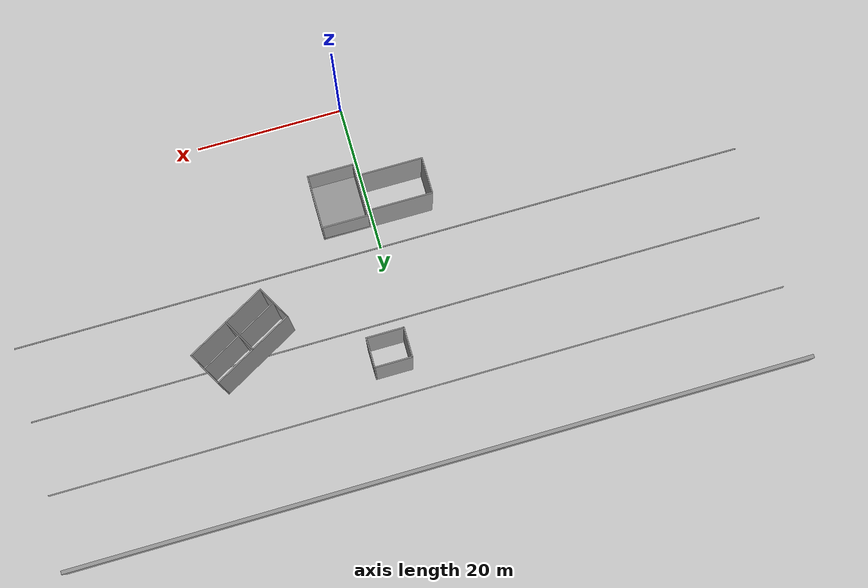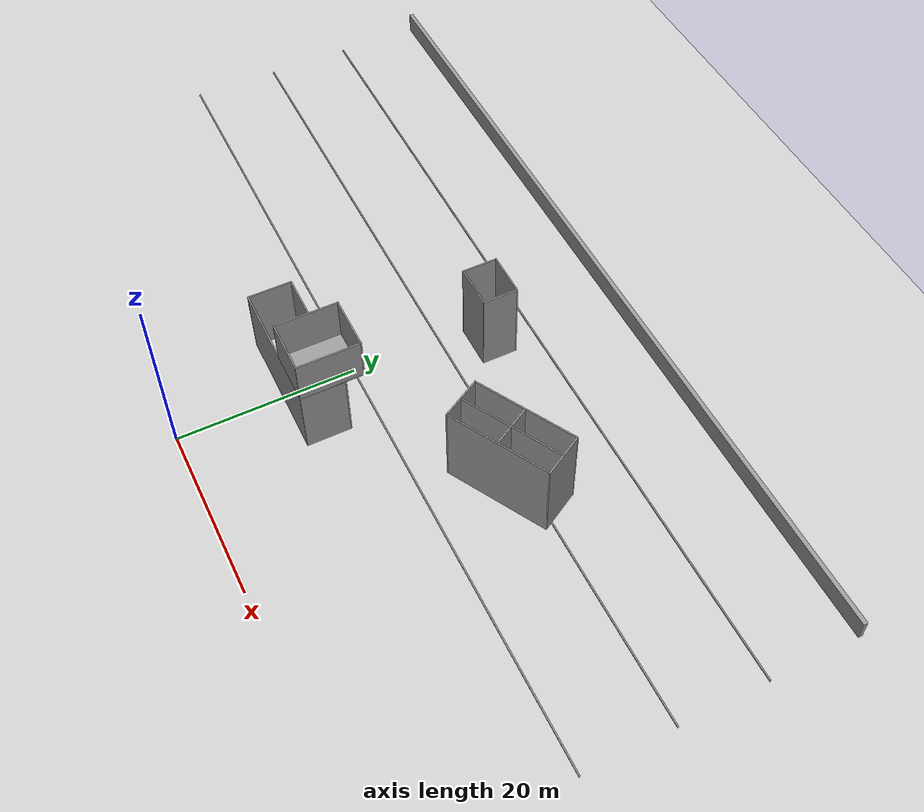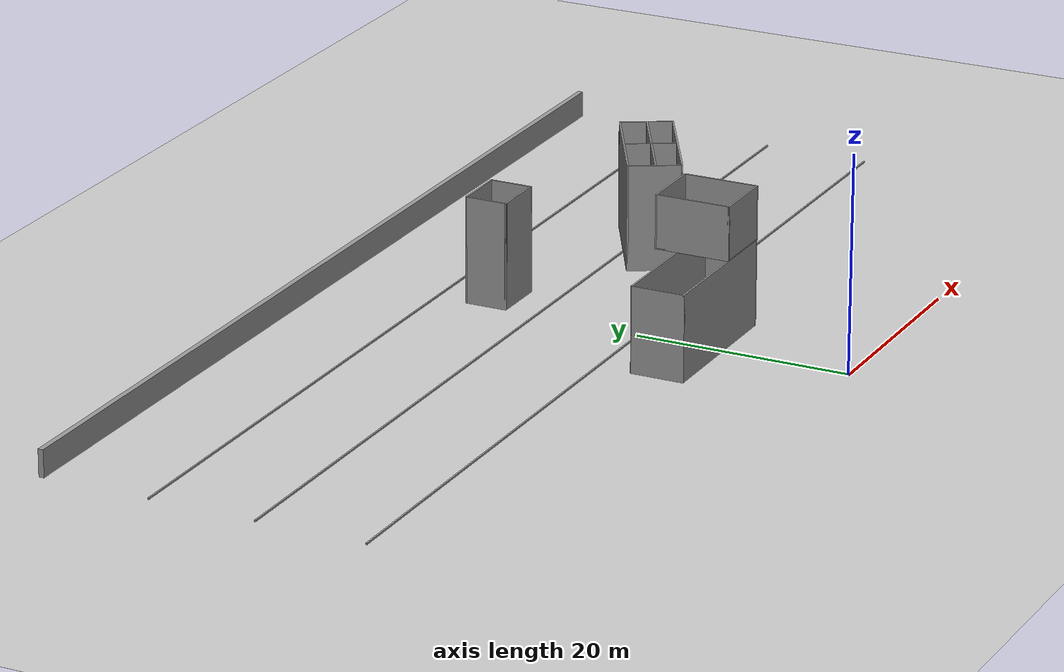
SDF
<sdf version="1.7">
 <world name="default">
  <model name="ground_plane">
   <static>1</static>
   <link name="link">
    <collision name="collision">
     <geometry><plane><normal>0 0 1</normal><size>100 100</size></plane></geometry>
     <surface><friction><ode><mu>100</mu><mu2>50</mu2></ode></friction></surface>
    </collision>
    <visual name="visual">
     <cast_shadows>0</cast_shadows>
     <geometry><plane><normal>0 0 1</normal><size>100 100</size></plane></geometry>
     <material>
      <script><uri>file://media/materials/scripts/gazebo.material</uri><name>Gazebo/Grey</name></script>
     </material>
    </visual>
   </link>
  </model>
  <model name="gridline100m_clone_0_clone_0">
   <pose>-0.012985 22.9729 0 0 -0 0</pose>
   <link name="Wall_2">
    <collision name="Wall_2_Collision">
     <geometry><box><size>100 0.15 0.15</size></box></geometry>
     <pose>0 0 0.075 0 -0 0</pose>
    </collision>
    <visual name="Wall_2_Visual">
     <pose>0 0 0.075 0 -0 0</pose>
     <geometry><box><size>100 0.15 0.15</size></box></geometry>
     <material>
      <script><uri>file://media/materials/scripts/gazebo.material</uri><name>Gazebo/Grey</name></script>
      <ambient>0 0 0 1</ambient>
     </material>
     <meta><layer>0</layer></meta>
    </visual>
    <pose>2e-06 -3.05812 0 0 -0 0</pose>
   </link>
   <static>1</static>
  </model>
  <model name="gridline100m_clone_0_clone_0_clone">
   <pose>-0.008378 33.0432 0 0 -0 0</pose>
   <link name="Wall_2">
    <collision name="Wall_2_Collision">
     <geometry><box><size>100 0.15 0.15</size></box></geometry>
     <pose>0 0 0.075 0 -0 0</pose>
    </collision>
    <visual name="Wall_2_Visual">
     <pose>0 0 0.075 0 -0 0</pose>
     <geometry><box><size>100 0.15 0.15</size></box></geometry>
     <material>
      <script><uri>file://media/materials/scripts/gazebo.material</uri><name>Gazebo/Grey</name></script>
      <ambient>0 0 0 1</ambient>
     </material>
     <meta><layer>0</layer></meta>
    </visual>
    <pose>2e-06 -3.05812 0 0 -0 0</pose>
   </link>
   <static>1</static>
  </model>
  <model name="gridline100m_clone_0_clone_0_clone_clone">
   <pose>-0.009803 42.9182 0 0 -0 0</pose>
   <link name="Wall_2">
    <collision name="Wall_2_Collision">
     <geometry><box><size>100 0.15 0.15</size></box></geometry>
     <pose>0 0 0.075 0 -0 0</pose>
    </collision>
    <visual name="Wall_2_Visual">
     <pose>0 0 0.075 0 -0 0</pose>
     <geometry><box><size>100 0.15 0.15</size></box></geometry>
     <material>
      <script><uri>file://media/materials/scripts/gazebo.material</uri><name>Gazebo/Grey</name></script>
      <ambient>0 0 0 1</ambient>
     </material>
     <meta><layer>0</layer></meta>
    </visual>
    <pose>2e-06 -3.05812 0 0 -0 0</pose>
   </link>
   <static>1</static>
  </model>
  <model name="building1_clone_0_clone_0">
   <link name="Wall_12">
    <pose>-1.19 -3.2645 0 0 -0 0</pose>
    <inertial>
     <mass>1</mass>
     <inertia><ixx>1</ixx><ixy>0</ixy><ixz>0</ixz><iyy>1</iyy><iyz>0</iyz><izz>1</izz></inertia>
    </inertial>
    <visual name="Wall_12_Visual">
     <pose>0 0 5 0 -0 0</pose>
     <geometry><box><size>5 0.15 10</size></box></geometry>
     <material>
      <script><uri>file://media/materials/scripts/gazebo.material</uri><name>Gazebo/Grey</name></script>
      <ambient>0.5 0.5 0.5 1</ambient>
      <shader type="pixel"><normal_map>__default__</normal_map></shader>
      <diffuse>0.5 0.5 0.5 1</diffuse>
      <specular>0.5 0.5 0.5 1</specular>
      <emissive>0 0 0 1</emissive>
     </material>
     <meta><layer>0</layer></meta>
    </visual>
    <collision name="Wall_12_Collision">
     <pose>0 0 5 0 -0 0</pose>
     <geometry><box><size>5 0.15 10</size></box></geometry>
     <surface>
      <friction>
       <ode><mu>1</mu><mu2>1</mu2><fdir1>0 0 0</fdir1><slip1>0</slip1><slip2>0</slip2></ode>
       <torsional>
        <coefficient>1</coefficient>
        <patch_radius>0</patch_radius>
        <surface_radius>0</surface_radius>
        <use_patch_radius>1</use_patch_radius>
        <ode><slip>0</slip></ode>
       </torsional>
      </friction>
      <bounce><restitution_coefficient>0</restitution_coefficient><threshold>1e+06</threshold></bounce>
      <contact>
       <collide_without_contact>0</collide_without_contact>
       <collide_without_contact_bitmask>1</collide_without_contact_bitmask>
       <collide_bitmask>1</collide_bitmask>
       <ode>
        <soft_cfm>0</soft_cfm>
        <soft_erp>0.2</soft_erp>
        <kp>1e+13</kp>
        <kd>1</kd>
        <max_vel>0.01</max_vel>
        <min_depth>0</min_depth>
       </ode>
       <bullet>
        <split_impulse>1</split_impulse>
        <split_impulse_penetration_threshold>-0.01</split_impulse_penetration_threshold>
        <soft_cfm>0</soft_cfm>
        <soft_erp>0.2</soft_erp>
        <kp>1e+13</kp>
        <kd>1</kd>
       </bullet>
      </contact>
     </surface>
    </collision>
   </link>
   <link name="Wall_13">
    <pose>1.235 -1.3395 0 0 -0 1.5708</pose>
    <inertial>
     <mass>1</mass>
     <inertia><ixx>1</ixx><ixy>0</ixy><ixz>0</ixz><iyy>1</iyy><iyz>0</iyz><izz>1</izz></inertia>
    </inertial>
    <visual name="Wall_13_Visual">
     <pose>0 0 5 0 -0 0</pose>
     <geometry><box><size>4 0.15 10</size></box></geometry>
     <material>
      <script><uri>file://media/materials/scripts/gazebo.material</uri><name>Gazebo/Grey</name></script>
      <ambient>0.5 0.5 0.5 1</ambient>
      <shader type="pixel"><normal_map>__default__</normal_map></shader>
      <diffuse>0.5 0.5 0.5 1</diffuse>
      <specular>0.5 0.5 0.5 1</specular>
      <emissive>0 0 0 1</emissive>
     </material>
     <meta><layer>0</layer></meta>
    </visual>
    <collision name="Wall_13_Collision">
     <pose>0 0 5 0 -0 0</pose>
     <geometry><box><size>4 0.15 10</size></box></geometry>
     <surface>
      <friction>
       <ode><mu>1</mu><mu2>1</mu2><fdir1>0 0 0</fdir1><slip1>0</slip1><slip2>0</slip2></ode>
       <torsional>
        <coefficient>1</coefficient>
        <patch_radius>0</patch_radius>
        <surface_radius>0</surface_radius>
        <use_patch_radius>1</use_patch_radius>
        <ode><slip>0</slip></ode>
       </torsional>
      </friction>
      <bounce><restitution_coefficient>0</restitution_coefficient><threshold>1e+06</threshold></bounce>
      <contact>
       <collide_without_contact>0</collide_without_contact>
       <collide_without_contact_bitmask>1</collide_without_contact_bitmask>
       <collide_bitmask>1</collide_bitmask>
       <ode>
        <soft_cfm>0</soft_cfm>
        <soft_erp>0.2</soft_erp>
        <kp>1e+13</kp>
        <kd>1</kd>
        <max_vel>0.01</max_vel>
        <min_depth>0</min_depth>
       </ode>
       <bullet>
        <split_impulse>1</split_impulse>
        <split_impulse_penetration_threshold>-0.01</split_impulse_penetration_threshold>
        <soft_cfm>0</soft_cfm>
        <soft_erp>0.2</soft_erp>
        <kp>1e+13</kp>
        <kd>1</kd>
       </bullet>
      </contact>
     </surface>
    </collision>
   </link>
   <link name="Wall_15">
    <pose>-1.19 0.5855 0 0 -0 3.14159</pose>
    <inertial>
     <mass>1</mass>
     <inertia><ixx>1</ixx><ixy>0</ixy><ixz>0</ixz><iyy>1</iyy><iyz>0</iyz><izz>1</izz></inertia>
    </inertial>
    <visual name="Wall_15_Visual">
     <pose>0 0 5 0 -0 0</pose>
     <geometry><box><size>5 0.15 10</size></box></geometry>
     <material>
      <script><uri>file://media/materials/scripts/gazebo.material</uri><name>Gazebo/Grey</name></script>
      <ambient>0.5 0.5 0.5 1</ambient>
      <shader type="pixel"><normal_map>__default__</normal_map></shader>
      <diffuse>0.5 0.5 0.5 1</diffuse>
      <specular>0.5 0.5 0.5 1</specular>
      <emissive>0 0 0 1</emissive>
     </material>
     <meta><layer>0</layer></meta>
    </visual>
    <collision name="Wall_15_Collision">
     <pose>0 0 5 0 -0 0</pose>
     <geometry><box><size>5 0.15 10</size></box></geometry>
     <surface>
      <friction>
       <ode><mu>1</mu><mu2>1</mu2><fdir1>0 0 0</fdir1><slip1>0</slip1><slip2>0</slip2></ode>
       <torsional>
        <coefficient>1</coefficient>
        <patch_radius>0</patch_radius>
        <surface_radius>0</surface_radius>
        <use_patch_radius>1</use_patch_radius>
        <ode><slip>0</slip></ode>
       </torsional>
      </friction>
      <bounce><restitution_coefficient>0</restitution_coefficient><threshold>1e+06</threshold></bounce>
      <contact>
       <collide_without_contact>0</collide_without_contact>
       <collide_without_contact_bitmask>1</collide_without_contact_bitmask>
       <collide_bitmask>1</collide_bitmask>
       <ode>
        <soft_cfm>0</soft_cfm>
        <soft_erp>0.2</soft_erp>
        <kp>1e+13</kp>
        <kd>1</kd>
        <max_vel>0.01</max_vel>
        <min_depth>0</min_depth>
       </ode>
       <bullet>
        <split_impulse>1</split_impulse>
        <split_impulse_penetration_threshold>-0.01</split_impulse_penetration_threshold>
        <soft_cfm>0</soft_cfm>
        <soft_erp>0.2</soft_erp>
        <kp>1e+13</kp>
        <kd>1</kd>
       </bullet>
      </contact>
     </surface>
    </collision>
   </link>
   <link name="Wall_16">
    <pose>-3.615 -1.3395 0 0 0 -1.5708</pose>
    <inertial>
     <mass>1</mass>
     <inertia><ixx>1</ixx><ixy>0</ixy><ixz>0</ixz><iyy>1</iyy><iyz>0</iyz><izz>1</izz></inertia>
    </inertial>
    <visual name="Wall_16_Visual">
     <pose>0 0 5 0 -0 0</pose>
     <geometry><box><size>4 0.15 10</size></box></geometry>
     <material>
      <script><uri>file://media/materials/scripts/gazebo.material</uri><name>Gazebo/Grey</name></script>
      <ambient>0.5 0.5 0.5 1</ambient>
      <shader type="pixel"><normal_map>__default__</normal_map></shader>
      <diffuse>0.5 0.5 0.5 1</diffuse>
      <specular>0.5 0.5 0.5 1</specular>
      <emissive>0 0 0 1</emissive>
     </material>
     <meta><layer>0</layer></meta>
    </visual>
    <collision name="Wall_16_Collision">
     <pose>0 0 5 0 -0 0</pose>
     <geometry><box><size>4 0.15 10</size></box></geometry>
     <surface>
      <friction>
       <ode><mu>1</mu><mu2>1</mu2><fdir1>0 0 0</fdir1><slip1>0</slip1><slip2>0</slip2></ode>
       <torsional>
        <coefficient>1</coefficient>
        <patch_radius>0</patch_radius>
        <surface_radius>0</surface_radius>
        <use_patch_radius>1</use_patch_radius>
        <ode><slip>0</slip></ode>
       </torsional>
      </friction>
      <bounce><restitution_coefficient>0</restitution_coefficient><threshold>1e+06</threshold></bounce>
      <contact>
       <collide_without_contact>0</collide_without_contact>
       <collide_without_contact_bitmask>1</collide_without_contact_bitmask>
       <collide_bitmask>1</collide_bitmask>
       <ode>
        <soft_cfm>0</soft_cfm>
        <soft_erp>0.2</soft_erp>
        <kp>1e+13</kp>
        <kd>1</kd>
        <max_vel>0.01</max_vel>
        <min_depth>0</min_depth>
       </ode>
       <bullet>
        <split_impulse>1</split_impulse>
        <split_impulse_penetration_threshold>-0.01</split_impulse_penetration_threshold>
        <soft_cfm>0</soft_cfm>
        <soft_erp>0.2</soft_erp>
        <kp>1e+13</kp>
        <kd>1</kd>
       </bullet>
      </contact>
     </surface>
    </collision>
   </link>
   <static>1</static>
   <pose>4.01416 36.2848 0 0 -0 0</pose>
  </model>
  <model name="building5_clone_clone_clone_2">
   <link name="Wall_64">
    <pose>-1e-06 -4.8275 0 0 -0 0</pose>
    <inertial>
     <mass>1</mass>
     <inertia><ixx>1</ixx><ixy>0</ixy><ixz>0</ixz><iyy>1</iyy><iyz>0</iyz><izz>1</izz></inertia>
    </inertial>
    <visual name="Wall_64_Visual">
     <pose>0 0 5 0 -0 0</pose>
     <geometry><box><size>12 0.15 10</size></box></geometry>
     <material>
      <script><uri>file://media/materials/scripts/gazebo.material</uri><name>Gazebo/Grey</name></script>
      <ambient>0.5 0.5 0.5 1</ambient>
      <shader type="pixel"><normal_map>__default__</normal_map></shader>
      <diffuse>0.5 0.5 0.5 1</diffuse>
      <specular>0.5 0.5 0.5 1</specular>
      <emissive>0 0 0 1</emissive>
     </material>
     <meta><layer>0</layer></meta>
    </visual>
    <collision name="Wall_64_Collision">
     <pose>0 0 5 0 -0 0</pose>
     <geometry><box><size>12 0.15 10</size></box></geometry>
     <surface>
      <friction>
       <ode><mu>1</mu><mu2>1</mu2><fdir1>0 0 0</fdir1><slip1>0</slip1><slip2>0</slip2></ode>
       <torsional>
        <coefficient>1</coefficient>
        <patch_radius>0</patch_radius>
        <surface_radius>0</surface_radius>
        <use_patch_radius>1</use_patch_radius>
        <ode><slip>0</slip></ode>
       </torsional>
      </friction>
      <bounce><restitution_coefficient>0</restitution_coefficient><threshold>1e+06</threshold></bounce>
      <contact>
       <collide_without_contact>0</collide_without_contact>
       <collide_without_contact_bitmask>1</collide_without_contact_bitmask>
       <collide_bitmask>1</collide_bitmask>
       <ode>
        <soft_cfm>0</soft_cfm>
        <soft_erp>0.2</soft_erp>
        <kp>1e+13</kp>
        <kd>1</kd>
        <max_vel>0.01</max_vel>
        <min_depth>0</min_depth>
       </ode>
       <bullet>
        <split_impulse>1</split_impulse>
        <split_impulse_penetration_threshold>-0.01</split_impulse_penetration_threshold>
        <soft_cfm>0</soft_cfm>
        <soft_erp>0.2</soft_erp>
        <kp>1e+13</kp>
        <kd>1</kd>
       </bullet>
      </contact>
     </surface>
    </collision>
   </link>
   <link name="Wall_65">
    <pose>5.925 -2.4025 0 0 -0 1.5708</pose>
    <inertial>
     <mass>1</mass>
     <inertia><ixx>1</ixx><ixy>0</ixy><ixz>0</ixz><iyy>1</iyy><iyz>0</iyz><izz>1</izz></inertia>
    </inertial>
    <visual name="Wall_65_Visual">
     <pose>0 0 5 0 -0 0</pose>
     <geometry><box><size>5 0.15 10</size></box></geometry>
     <material>
      <script><uri>file://media/materials/scripts/gazebo.material</uri><name>Gazebo/Grey</name></script>
      <ambient>0.5 0.5 0.5 1</ambient>
      <shader type="pixel"><normal_map>__default__</normal_map></shader>
      <diffuse>0.5 0.5 0.5 1</diffuse>
      <specular>0.5 0.5 0.5 1</specular>
      <emissive>0 0 0 1</emissive>
     </material>
     <meta><layer>0</layer></meta>
    </visual>
    <collision name="Wall_65_Collision">
     <pose>0 0 5 0 -0 0</pose>
     <geometry><box><size>5 0.15 10</size></box></geometry>
     <surface>
      <friction>
       <ode><mu>1</mu><mu2>1</mu2><fdir1>0 0 0</fdir1><slip1>0</slip1><slip2>0</slip2></ode>
       <torsional>
        <coefficient>1</coefficient>
        <patch_radius>0</patch_radius>
        <surface_radius>0</surface_radius>
        <use_patch_radius>1</use_patch_radius>
        <ode><slip>0</slip></ode>
       </torsional>
      </friction>
      <bounce><restitution_coefficient>0</restitution_coefficient><threshold>1e+06</threshold></bounce>
      <contact>
       <collide_without_contact>0</collide_without_contact>
       <collide_without_contact_bitmask>1</collide_without_contact_bitmask>
       <collide_bitmask>1</collide_bitmask>
       <ode>
        <soft_cfm>0</soft_cfm>
        <soft_erp>0.2</soft_erp>
        <kp>1e+13</kp>
        <kd>1</kd>
        <max_vel>0.01</max_vel>
        <min_depth>0</min_depth>
       </ode>
       <bullet>
        <split_impulse>1</split_impulse>
        <split_impulse_penetration_threshold>-0.01</split_impulse_penetration_threshold>
        <soft_cfm>0</soft_cfm>
        <soft_erp>0.2</soft_erp>
        <kp>1e+13</kp>
        <kd>1</kd>
       </bullet>
      </contact>
     </surface>
    </collision>
   </link>
   <link name="Wall_66">
    <pose>0 0.0225 0 0 -0 3.14159</pose>
    <inertial>
     <mass>1</mass>
     <inertia><ixx>1</ixx><ixy>0</ixy><ixz>0</ixz><iyy>1</iyy><iyz>0</iyz><izz>1</izz></inertia>
    </inertial>
    <visual name="Wall_66_Visual">
     <pose>0 0 5 0 -0 0</pose>
     <geometry><box><size>12 0.15 10</size></box></geometry>
     <material>
      <script><uri>file://media/materials/scripts/gazebo.material</uri><name>Gazebo/Grey</name></script>
      <ambient>0.5 0.5 0.5 1</ambient>
      <shader type="pixel"><normal_map>__default__</normal_map></shader>
      <diffuse>0.5 0.5 0.5 1</diffuse>
      <specular>0.5 0.5 0.5 1</specular>
      <emissive>0 0 0 1</emissive>
     </material>
     <meta><layer>0</layer></meta>
    </visual>
    <collision name="Wall_66_Collision">
     <pose>0 0 5 0 -0 0</pose>
     <geometry><box><size>12 0.15 10</size></box></geometry>
     <surface>
      <friction>
       <ode><mu>1</mu><mu2>1</mu2><fdir1>0 0 0</fdir1><slip1>0</slip1><slip2>0</slip2></ode>
       <torsional>
        <coefficient>1</coefficient>
        <patch_radius>0</patch_radius>
        <surface_radius>0</surface_radius>
        <use_patch_radius>1</use_patch_radius>
        <ode><slip>0</slip></ode>
       </torsional>
      </friction>
      <bounce><restitution_coefficient>0</restitution_coefficient><threshold>1e+06</threshold></bounce>
      <contact>
       <collide_without_contact>0</collide_without_contact>
       <collide_without_contact_bitmask>1</collide_without_contact_bitmask>
       <collide_bitmask>1</collide_bitmask>
       <ode>
        <soft_cfm>0</soft_cfm>
        <soft_erp>0.2</soft_erp>
        <kp>1e+13</kp>
        <kd>1</kd>
        <max_vel>0.01</max_vel>
        <min_depth>0</min_depth>
       </ode>
       <bullet>
        <split_impulse>1</split_impulse>
        <split_impulse_penetration_threshold>-0.01</split_impulse_penetration_threshold>
        <soft_cfm>0</soft_cfm>
        <soft_erp>0.2</soft_erp>
        <kp>1e+13</kp>
        <kd>1</kd>
       </bullet>
      </contact>
     </surface>
    </collision>
   </link>
   <link name="Wall_67">
    <pose>-5.925 -2.4025 0 0 0 -1.5708</pose>
    <inertial>
     <mass>1</mass>
     <inertia><ixx>1</ixx><ixy>0</ixy><ixz>0</ixz><iyy>1</iyy><iyz>0</iyz><izz>1</izz></inertia>
    </inertial>
    <visual name="Wall_67_Visual">
     <pose>0 0 5 0 -0 0</pose>
     <geometry><box><size>5 0.15 10</size></box></geometry>
     <material>
      <script><uri>file://media/materials/scripts/gazebo.material</uri><name>Gazebo/Grey</name></script>
      <ambient>0.5 0.5 0.5 1</ambient>
      <shader type="pixel"><normal_map>__default__</normal_map></shader>
      <diffuse>0.5 0.5 0.5 1</diffuse>
      <specular>0.5 0.5 0.5 1</specular>
      <emissive>0 0 0 1</emissive>
     </material>
     <meta><layer>0</layer></meta>
    </visual>
    <collision name="Wall_67_Collision">
     <pose>0 0 5 0 -0 0</pose>
     <geometry><box><size>5 0.15 10</size></box></geometry>
     <surface>
      <friction>
       <ode><mu>1</mu><mu2>1</mu2><fdir1>0 0 0</fdir1><slip1>0</slip1><slip2>0</slip2></ode>
       <torsional>
        <coefficient>1</coefficient>
        <patch_radius>0</patch_radius>
        <surface_radius>0</surface_radius>
        <use_patch_radius>1</use_patch_radius>
        <ode><slip>0</slip></ode>
       </torsional>
      </friction>
      <bounce><restitution_coefficient>0</restitution_coefficient><threshold>1e+06</threshold></bounce>
      <contact>
       <collide_without_contact>0</collide_without_contact>
       <collide_without_contact_bitmask>1</collide_without_contact_bitmask>
       <collide_bitmask>1</collide_bitmask>
       <ode>
        <soft_cfm>0</soft_cfm>
        <soft_erp>0.2</soft_erp>
        <kp>1e+13</kp>
        <kd>1</kd>
        <max_vel>0.01</max_vel>
        <min_depth>0</min_depth>
       </ode>
       <bullet>
        <split_impulse>1</split_impulse>
        <split_impulse_penetration_threshold>-0.01</split_impulse_penetration_threshold>
        <soft_cfm>0</soft_cfm>
        <soft_erp>0.2</soft_erp>
        <kp>1e+13</kp>
        <kd>1</kd>
       </bullet>
      </contact>
     </surface>
    </collision>
   </link>
   <link name="Wall_69">
    <pose>0 -2.3885 0 0 0 -1.5708</pose>
    <inertial>
     <mass>1</mass>
     <inertia><ixx>1</ixx><ixy>0</ixy><ixz>0</ixz><iyy>1</iyy><iyz>0</iyz><izz>1</izz></inertia>
    </inertial>
    <visual name="Wall_69_Visual">
     <pose>0 0 5 0 -0 0</pose>
     <geometry><box><size>4.9 0.15 10</size></box></geometry>
     <material>
      <script><uri>file://media/materials/scripts/gazebo.material</uri><name>Gazebo/Grey</name></script>
      <ambient>0.5 0.5 0.5 1</ambient>
      <shader type="pixel"><normal_map>__default__</normal_map></shader>
      <diffuse>0.5 0.5 0.5 1</diffuse>
      <specular>0.5 0.5 0.5 1</specular>
      <emissive>0 0 0 1</emissive>
     </material>
     <meta><layer>0</layer></meta>
    </visual>
    <collision name="Wall_69_Collision">
     <pose>0 0 5 0 -0 0</pose>
     <geometry><box><size>4.9 0.15 10</size></box></geometry>
     <surface>
      <friction>
       <ode><mu>1</mu><mu2>1</mu2><fdir1>0 0 0</fdir1><slip1>0</slip1><slip2>0</slip2></ode>
       <torsional>
        <coefficient>1</coefficient>
        <patch_radius>0</patch_radius>
        <surface_radius>0</surface_radius>
        <use_patch_radius>1</use_patch_radius>
        <ode><slip>0</slip></ode>
       </torsional>
      </friction>
      <bounce><restitution_coefficient>0</restitution_coefficient><threshold>1e+06</threshold></bounce>
      <contact>
       <collide_without_contact>0</collide_without_contact>
       <collide_without_contact_bitmask>1</collide_without_contact_bitmask>
       <collide_bitmask>1</collide_bitmask>
       <ode>
        <soft_cfm>0</soft_cfm>
        <soft_erp>0.2</soft_erp>
        <kp>1e+13</kp>
        <kd>1</kd>
        <max_vel>0.01</max_vel>
        <min_depth>0</min_depth>
       </ode>
       <bullet>
        <split_impulse>1</split_impulse>
        <split_impulse_penetration_threshold>-0.01</split_impulse_penetration_threshold>
        <soft_cfm>0</soft_cfm>
        <soft_erp>0.2</soft_erp>
        <kp>1e+13</kp>
        <kd>1</kd>
       </bullet>
      </contact>
     </surface>
    </collision>
   </link>
   <link name="Wall_74">
    <pose>-0.024 -2.4605 0 0 -0 0</pose>
    <inertial>
     <mass>1</mass>
     <inertia><ixx>1</ixx><ixy>0</ixy><ixz>0</ixz><iyy>1</iyy><iyz>0</iyz><izz>1</izz></inertia>
    </inertial>
    <visual name="Wall_74_Visual">
     <pose>0 0 5 0 -0 0</pose>
     <geometry><box><size>11.9 0.15 10</size></box></geometry>
     <material>
      <script><uri>file://media/materials/scripts/gazebo.material</uri><name>Gazebo/Grey</name></script>
      <ambient>0.5 0.5 0.5 1</ambient>
      <shader type="pixel"><normal_map>__default__</normal_map></shader>
      <diffuse>0.5 0.5 0.5 1</diffuse>
      <specular>0.5 0.5 0.5 1</specular>
      <emissive>0 0 0 1</emissive>
     </material>
     <meta><layer>0</layer></meta>
    </visual>
    <collision name="Wall_74_Collision">
     <pose>0 0 5 0 -0 0</pose>
     <geometry><box><size>11.9 0.15 10</size></box></geometry>
     <surface>
      <friction>
       <ode><mu>1</mu><mu2>1</mu2><fdir1>0 0 0</fdir1><slip1>0</slip1><slip2>0</slip2></ode>
       <torsional>
        <coefficient>1</coefficient>
        <patch_radius>0</patch_radius>
        <surface_radius>0</surface_radius>
        <use_patch_radius>1</use_patch_radius>
        <ode><slip>0</slip></ode>
       </torsional>
      </friction>
      <bounce><restitution_coefficient>0</restitution_coefficient><threshold>1e+06</threshold></bounce>
      <contact>
       <collide_without_contact>0</collide_without_contact>
       <collide_without_contact_bitmask>1</collide_without_contact_bitmask>
       <collide_bitmask>1</collide_bitmask>
       <ode>
        <soft_cfm>0</soft_cfm>
        <soft_erp>0.2</soft_erp>
        <kp>1e+13</kp>
        <kd>1</kd>
        <max_vel>0.01</max_vel>
        <min_depth>0</min_depth>
       </ode>
       <bullet>
        <split_impulse>1</split_impulse>
        <split_impulse_penetration_threshold>-0.01</split_impulse_penetration_threshold>
        <soft_cfm>0</soft_cfm>
        <soft_erp>0.2</soft_erp>
        <kp>1e+13</kp>
        <kd>1</kd>
       </bullet>
      </contact>
     </surface>
    </collision>
   </link>
   <static>1</static>
   <pose>19.1363 30.5156 0 0 -0 0.507347</pose>
  </model>
  <model name="multistory1_clone">
   <link name="Floor_6">
    <pose>4.5 0 8 0 -0 0</pose>
    <inertial>
     <mass>1</mass>
     <inertia><ixx>1</ixx><ixy>0</ixy><ixz>0</ixz><iyy>1</iyy><iyz>0</iyz><izz>1</izz></inertia>
    </inertial>
    <visual name="Floor_6_Visual">
     <pose>0 0 0.05 0 -0 0</pose>
     <geometry><box><size>6 7 0.1</size></box></geometry>
     <material>
      <script><uri>file://media/materials/scripts/gazebo.material</uri><name>Gazebo/Grey</name></script>
      <ambient>0.5 0.5 0.5 1</ambient>
      <shader type="pixel"><normal_map>__default__</normal_map></shader>
      <diffuse>0.5 0.5 0.5 1</diffuse>
      <specular>0.5 0.5 0.5 1</specular>
      <emissive>0 0 0 1</emissive>
     </material>
     <meta><layer>1</layer></meta>
    </visual>
    <collision name="Floor_6_Collision">
     <pose>0 0 0.05 0 -0 0</pose>
     <geometry><box><size>6 7 0.1</size></box></geometry>
     <surface>
      <friction>
       <ode><mu>1</mu><mu2>1</mu2><fdir1>0 0 0</fdir1><slip1>0</slip1><slip2>0</slip2></ode>
       <torsional>
        <coefficient>1</coefficient>
        <patch_radius>0</patch_radius>
        <surface_radius>0</surface_radius>
        <use_patch_radius>1</use_patch_radius>
        <ode><slip>0</slip></ode>
       </torsional>
      </friction>
      <bounce><restitution_coefficient>0</restitution_coefficient><threshold>1e+06</threshold></bounce>
      <contact>
       <collide_without_contact>0</collide_without_contact>
       <collide_without_contact_bitmask>1</collide_without_contact_bitmask>
       <collide_bitmask>1</collide_bitmask>
       <ode>
        <soft_cfm>0</soft_cfm>
        <soft_erp>0.2</soft_erp>
        <kp>1e+13</kp>
        <kd>1</kd>
        <max_vel>0.01</max_vel>
        <min_depth>0</min_depth>
       </ode>
       <bullet>
        <split_impulse>1</split_impulse>
        <split_impulse_penetration_threshold>-0.01</split_impulse_penetration_threshold>
        <soft_cfm>0</soft_cfm>
        <soft_erp>0.2</soft_erp>
        <kp>1e+13</kp>
        <kd>1</kd>
       </bullet>
      </contact>
     </surface>
    </collision>
   </link>
   <link name="Wall_1">
    <pose>0 -3.425 0 0 -0 0</pose>
    <inertial>
     <mass>1</mass>
     <inertia><ixx>1</ixx><ixy>0</ixy><ixz>0</ixz><iyy>1</iyy><iyz>0</iyz><izz>1</izz></inertia>
    </inertial>
    <visual name="Wall_1_Visual">
     <pose>0 0 4 0 -0 0</pose>
     <geometry><box><size>15 0.15 8</size></box></geometry>
     <material>
      <script><uri>file://media/materials/scripts/gazebo.material</uri><name>Gazebo/Grey</name></script>
      <ambient>0.5 0.5 0.5 1</ambient>
      <shader type="pixel"><normal_map>__default__</normal_map></shader>
      <diffuse>0.5 0.5 0.5 1</diffuse>
      <specular>0.5 0.5 0.5 1</specular>
      <emissive>0 0 0 1</emissive>
     </material>
     <meta><layer>0</layer></meta>
    </visual>
    <collision name="Wall_1_Collision">
     <pose>0 0 4 0 -0 0</pose>
     <geometry><box><size>15 0.15 8</size></box></geometry>
     <surface>
      <friction>
       <ode><mu>1</mu><mu2>1</mu2><fdir1>0 0 0</fdir1><slip1>0</slip1><slip2>0</slip2></ode>
       <torsional>
        <coefficient>1</coefficient>
        <patch_radius>0</patch_radius>
        <surface_radius>0</surface_radius>
        <use_patch_radius>1</use_patch_radius>
        <ode><slip>0</slip></ode>
       </torsional>
      </friction>
      <bounce><restitution_coefficient>0</restitution_coefficient><threshold>1e+06</threshold></bounce>
      <contact>
       <collide_without_contact>0</collide_without_contact>
       <collide_without_contact_bitmask>1</collide_without_contact_bitmask>
       <collide_bitmask>1</collide_bitmask>
       <ode>
        <soft_cfm>0</soft_cfm>
        <soft_erp>0.2</soft_erp>
        <kp>1e+13</kp>
        <kd>1</kd>
        <max_vel>0.01</max_vel>
        <min_depth>0</min_depth>
       </ode>
       <bullet>
        <split_impulse>1</split_impulse>
        <split_impulse_penetration_threshold>-0.01</split_impulse_penetration_threshold>
        <soft_cfm>0</soft_cfm>
        <soft_erp>0.2</soft_erp>
        <kp>1e+13</kp>
        <kd>1</kd>
       </bullet>
      </contact>
     </surface>
    </collision>
   </link>
   <link name="Wall_2">
    <pose>7.425 -1 0 0 -0 1.5708</pose>
    <inertial>
     <mass>1</mass>
     <inertia><ixx>1</ixx><ixy>0</ixy><ixz>0</ixz><iyy>1</iyy><iyz>0</iyz><izz>1</izz></inertia>
    </inertial>
    <visual name="Wall_2_Visual">
     <pose>0 0 4 0 -0 0</pose>
     <geometry><box><size>5 0.15 8</size></box></geometry>
     <material>
      <script><uri>file://media/materials/scripts/gazebo.material</uri><name>Gazebo/Grey</name></script>
      <ambient>0.5 0.5 0.5 1</ambient>
      <shader type="pixel"><normal_map>__default__</normal_map></shader>
      <diffuse>0.5 0.5 0.5 1</diffuse>
      <specular>0.5 0.5 0.5 1</specular>
      <emissive>0 0 0 1</emissive>
     </material>
     <meta><layer>0</layer></meta>
    </visual>
    <collision name="Wall_2_Collision">
     <pose>0 0 4 0 -0 0</pose>
     <geometry><box><size>5 0.15 8</size></box></geometry>
     <surface>
      <friction>
       <ode><mu>1</mu><mu2>1</mu2><fdir1>0 0 0</fdir1><slip1>0</slip1><slip2>0</slip2></ode>
       <torsional>
        <coefficient>1</coefficient>
        <patch_radius>0</patch_radius>
        <surface_radius>0</surface_radius>
        <use_patch_radius>1</use_patch_radius>
        <ode><slip>0</slip></ode>
       </torsional>
      </friction>
      <bounce><restitution_coefficient>0</restitution_coefficient><threshold>1e+06</threshold></bounce>
      <contact>
       <collide_without_contact>0</collide_without_contact>
       <collide_without_contact_bitmask>1</collide_without_contact_bitmask>
       <collide_bitmask>1</collide_bitmask>
       <ode>
        <soft_cfm>0</soft_cfm>
        <soft_erp>0.2</soft_erp>
        <kp>1e+13</kp>
        <kd>1</kd>
        <max_vel>0.01</max_vel>
        <min_depth>0</min_depth>
       </ode>
       <bullet>
        <split_impulse>1</split_impulse>
        <split_impulse_penetration_threshold>-0.01</split_impulse_penetration_threshold>
        <soft_cfm>0</soft_cfm>
        <soft_erp>0.2</soft_erp>
        <kp>1e+13</kp>
        <kd>1</kd>
       </bullet>
      </contact>
     </surface>
    </collision>
   </link>
   <link name="Wall_37">
    <pose>7.425 0 8 0 -0 1.5708</pose>
    <inertial>
     <mass>1</mass>
     <inertia><ixx>1</ixx><ixy>0</ixy><ixz>0</ixz><iyy>1</iyy><iyz>0</iyz><izz>1</izz></inertia>
    </inertial>
    <visual name="Wall_37_Visual">
     <pose>0 0 2.5 0 -0 0</pose>
     <geometry><box><size>7 0.15 5</size></box></geometry>
     <material>
      <script><uri>file://media/materials/scripts/gazebo.material</uri><name>Gazebo/Grey</name></script>
      <ambient>0.5 0.5 0.5 1</ambient>
      <shader type="pixel"><normal_map>__default__</normal_map></shader>
      <diffuse>0.5 0.5 0.5 1</diffuse>
      <specular>0.5 0.5 0.5 1</specular>
      <emissive>0 0 0 1</emissive>
     </material>
     <meta><layer>1</layer></meta>
    </visual>
    <collision name="Wall_37_Collision">
     <pose>0 0 2.5 0 -0 0</pose>
     <geometry><box><size>7 0.15 5</size></box></geometry>
     <surface>
      <friction>
       <ode><mu>1</mu><mu2>1</mu2><fdir1>0 0 0</fdir1><slip1>0</slip1><slip2>0</slip2></ode>
       <torsional>
        <coefficient>1</coefficient>
        <patch_radius>0</patch_radius>
        <surface_radius>0</surface_radius>
        <use_patch_radius>1</use_patch_radius>
        <ode><slip>0</slip></ode>
       </torsional>
      </friction>
      <bounce><restitution_coefficient>0</restitution_coefficient><threshold>1e+06</threshold></bounce>
      <contact>
       <collide_without_contact>0</collide_without_contact>
       <collide_without_contact_bitmask>1</collide_without_contact_bitmask>
       <collide_bitmask>1</collide_bitmask>
       <ode>
        <soft_cfm>0</soft_cfm>
        <soft_erp>0.2</soft_erp>
        <kp>1e+13</kp>
        <kd>1</kd>
        <max_vel>0.01</max_vel>
        <min_depth>0</min_depth>
       </ode>
       <bullet>
        <split_impulse>1</split_impulse>
        <split_impulse_penetration_threshold>-0.01</split_impulse_penetration_threshold>
        <soft_cfm>0</soft_cfm>
        <soft_erp>0.2</soft_erp>
        <kp>1e+13</kp>
        <kd>1</kd>
       </bullet>
      </contact>
     </surface>
    </collision>
   </link>
   <link name="Wall_43">
    <pose>4.5 3.425 8 0 -0 3.14159</pose>
    <inertial>
     <mass>1</mass>
     <inertia><ixx>1</ixx><ixy>0</ixy><ixz>0</ixz><iyy>1</iyy><iyz>0</iyz><izz>1</izz></inertia>
    </inertial>
    <visual name="Wall_43_Visual">
     <pose>0 0 2.5 0 -0 0</pose>
     <geometry><box><size>6 0.15 5</size></box></geometry>
     <material>
      <script><uri>file://media/materials/scripts/gazebo.material</uri><name>Gazebo/Grey</name></script>
      <ambient>0.5 0.5 0.5 1</ambient>
      <shader type="pixel"><normal_map>__default__</normal_map></shader>
      <diffuse>0.5 0.5 0.5 1</diffuse>
      <specular>0.5 0.01 0.5 1</specular>
      <emissive>0 0 0 1</emissive>
     </material>
     <meta><layer>1</layer></meta>
    </visual>
    <collision name="Wall_43_Collision">
     <pose>0 0 2.5 0 -0 0</pose>
     <geometry><box><size>6 0.15 5</size></box></geometry>
     <surface>
      <friction>
       <ode><mu>1</mu><mu2>1</mu2><fdir1>0 0 0</fdir1><slip1>0</slip1><slip2>0</slip2></ode>
       <torsional>
        <coefficient>1</coefficient>
        <patch_radius>0</patch_radius>
        <surface_radius>0</surface_radius>
        <use_patch_radius>1</use_patch_radius>
        <ode><slip>0</slip></ode>
       </torsional>
      </friction>
      <bounce><restitution_coefficient>0</restitution_coefficient><threshold>1e+06</threshold></bounce>
      <contact>
       <collide_without_contact>0</collide_without_contact>
       <collide_without_contact_bitmask>1</collide_without_contact_bitmask>
       <collide_bitmask>1</collide_bitmask>
       <ode>
        <soft_cfm>0</soft_cfm>
        <soft_erp>0.2</soft_erp>
        <kp>1e+13</kp>
        <kd>1</kd>
        <max_vel>0.01</max_vel>
        <min_depth>0</min_depth>
       </ode>
       <bullet>
        <split_impulse>1</split_impulse>
        <split_impulse_penetration_threshold>-0.01</split_impulse_penetration_threshold>
        <soft_cfm>0</soft_cfm>
        <soft_erp>0.2</soft_erp>
        <kp>1e+13</kp>
        <kd>1</kd>
       </bullet>
      </contact>
     </surface>
    </collision>
   </link>
   <link name="Wall_46">
    <pose>1.575 0 8 0 0 -1.5708</pose>
    <inertial>
     <mass>1</mass>
     <inertia><ixx>1</ixx><ixy>0</ixy><ixz>0</ixz><iyy>1</iyy><iyz>0</iyz><izz>1</izz></inertia>
    </inertial>
    <visual name="Wall_46_Visual">
     <pose>0 0 2.5 0 -0 0</pose>
     <geometry><box><size>7 0.15 5</size></box></geometry>
     <material>
      <script><uri>file://media/materials/scripts/gazebo.material</uri><name>Gazebo/Grey</name></script>
      <ambient>0.5 0.5 0.5 1</ambient>
      <shader type="pixel"><normal_map>__default__</normal_map></shader>
      <diffuse>0.5 0.5 0.5 1</diffuse>
      <specular>0.5 0.5 0.5 1</specular>
      <emissive>0 0 0 1</emissive>
     </material>
     <meta><layer>1</layer></meta>
    </visual>
    <collision name="Wall_46_Collision">
     <pose>0 0 2.5 0 -0 0</pose>
     <geometry><box><size>7 0.15 5</size></box></geometry>
     <surface>
      <friction>
       <ode><mu>1</mu><mu2>1</mu2><fdir1>0 0 0</fdir1><slip1>0</slip1><slip2>0</slip2></ode>
       <torsional>
        <coefficient>1</coefficient>
        <patch_radius>0</patch_radius>
        <surface_radius>0</surface_radius>
        <use_patch_radius>1</use_patch_radius>
        <ode><slip>0</slip></ode>
       </torsional>
      </friction>
      <bounce><restitution_coefficient>0</restitution_coefficient><threshold>1e+06</threshold></bounce>
      <contact>
       <collide_without_contact>0</collide_without_contact>
       <collide_without_contact_bitmask>1</collide_without_contact_bitmask>
       <collide_bitmask>1</collide_bitmask>
       <ode>
        <soft_cfm>0</soft_cfm>
        <soft_erp>0.2</soft_erp>
        <kp>1e+13</kp>
        <kd>1</kd>
        <max_vel>0.01</max_vel>
        <min_depth>0</min_depth>
       </ode>
       <bullet>
        <split_impulse>1</split_impulse>
        <split_impulse_penetration_threshold>-0.01</split_impulse_penetration_threshold>
        <soft_cfm>0</soft_cfm>
        <soft_erp>0.2</soft_erp>
        <kp>1e+13</kp>
        <kd>1</kd>
       </bullet>
      </contact>
     </surface>
    </collision>
   </link>
   <link name="Wall_47">
    <pose>4.5 -3.425 8 0 -0 0</pose>
    <inertial>
     <mass>1</mass>
     <inertia><ixx>1</ixx><ixy>0</ixy><ixz>0</ixz><iyy>1</iyy><iyz>0</iyz><izz>1</izz></inertia>
    </inertial>
    <visual name="Wall_47_Visual">
     <pose>0 0 2.5 0 -0 0</pose>
     <geometry><box><size>6 0.15 5</size></box></geometry>
     <material>
      <script><uri>file://media/materials/scripts/gazebo.material</uri><name>Gazebo/Grey</name></script>
      <ambient>0.5 0.5 0.5 1</ambient>
      <shader type="pixel"><normal_map>__default__</normal_map></shader>
      <diffuse>0.5 0.5 0.5 1</diffuse>
      <specular>0.5 0.5 0.5 1</specular>
      <emissive>0 0 0 1</emissive>
     </material>
     <meta><layer>1</layer></meta>
    </visual>
    <collision name="Wall_47_Collision">
     <pose>0 0 2.5 0 -0 0</pose>
     <geometry><box><size>6 0.15 5</size></box></geometry>
     <surface>
      <friction>
       <ode><mu>1</mu><mu2>1</mu2><fdir1>0 0 0</fdir1><slip1>0</slip1><slip2>0</slip2></ode>
       <torsional>
        <coefficient>1</coefficient>
        <patch_radius>0</patch_radius>
        <surface_radius>0</surface_radius>
        <use_patch_radius>1</use_patch_radius>
        <ode><slip>0</slip></ode>
       </torsional>
      </friction>
      <bounce><restitution_coefficient>0</restitution_coefficient><threshold>1e+06</threshold></bounce>
      <contact>
       <collide_without_contact>0</collide_without_contact>
       <collide_without_contact_bitmask>1</collide_without_contact_bitmask>
       <collide_bitmask>1</collide_bitmask>
       <ode>
        <soft_cfm>0</soft_cfm>
        <soft_erp>0.2</soft_erp>
        <kp>1e+13</kp>
        <kd>1</kd>
        <max_vel>0.01</max_vel>
        <min_depth>0</min_depth>
       </ode>
       <bullet>
        <split_impulse>1</split_impulse>
        <split_impulse_penetration_threshold>-0.01</split_impulse_penetration_threshold>
        <soft_cfm>0</soft_cfm>
        <soft_erp>0.2</soft_erp>
        <kp>1e+13</kp>
        <kd>1</kd>
       </bullet>
      </contact>
     </surface>
    </collision>
   </link>
   <link name="Wall_5">
    <pose>0 1.425 0 0 -0 3.14159</pose>
    <inertial>
     <mass>1</mass>
     <inertia><ixx>1</ixx><ixy>0</ixy><ixz>0</ixz><iyy>1</iyy><iyz>0</iyz><izz>1</izz></inertia>
    </inertial>
    <visual name="Wall_5_Visual">
     <pose>0 0 4 0 -0 0</pose>
     <geometry><box><size>15 0.15 8</size></box></geometry>
     <material>
      <script><uri>file://media/materials/scripts/gazebo.material</uri><name>Gazebo/Grey</name></script>
      <ambient>0.5 0.5 0.5 1</ambient>
      <shader type="pixel"><normal_map>__default__</normal_map></shader>
      <diffuse>0.5 0.5 0.5 1</diffuse>
      <specular>0.5 0.5 0.5 1</specular>
      <emissive>0 0 0 1</emissive>
     </material>
     <meta><layer>0</layer></meta>
    </visual>
    <collision name="Wall_5_Collision">
     <pose>0 0 4 0 -0 0</pose>
     <geometry><box><size>15 0.15 8</size></box></geometry>
     <surface>
      <friction>
       <ode><mu>1</mu><mu2>1</mu2><fdir1>0 0 0</fdir1><slip1>0</slip1><slip2>0</slip2></ode>
       <torsional>
        <coefficient>1</coefficient>
        <patch_radius>0</patch_radius>
        <surface_radius>0</surface_radius>
        <use_patch_radius>1</use_patch_radius>
        <ode><slip>0</slip></ode>
       </torsional>
      </friction>
      <bounce><restitution_coefficient>0</restitution_coefficient><threshold>1e+06</threshold></bounce>
      <contact>
       <collide_without_contact>0</collide_without_contact>
       <collide_without_contact_bitmask>1</collide_without_contact_bitmask>
       <collide_bitmask>1</collide_bitmask>
       <ode>
        <soft_cfm>0</soft_cfm>
        <soft_erp>0.2</soft_erp>
        <kp>1e+13</kp>
        <kd>1</kd>
        <max_vel>0.01</max_vel>
        <min_depth>0</min_depth>
       </ode>
       <bullet>
        <split_impulse>1</split_impulse>
        <split_impulse_penetration_threshold>-0.01</split_impulse_penetration_threshold>
        <soft_cfm>0</soft_cfm>
        <soft_erp>0.2</soft_erp>
        <kp>1e+13</kp>
        <kd>1</kd>
       </bullet>
      </contact>
     </surface>
    </collision>
   </link>
   <link name="Wall_6">
    <pose>-7.425 -1 0 0 0 -1.5708</pose>
    <inertial>
     <mass>1</mass>
     <inertia><ixx>1</ixx><ixy>0</ixy><ixz>0</ixz><iyy>1</iyy><iyz>0</iyz><izz>1</izz></inertia>
    </inertial>
    <visual name="Wall_6_Visual">
     <pose>0 0 4 0 -0 0</pose>
     <geometry><box><size>5 0.15 8</size></box></geometry>
     <material>
      <script><uri>file://media/materials/scripts/gazebo.material</uri><name>Gazebo/Grey</name></script>
      <ambient>0.5 0.5 0.5 1</ambient>
      <shader type="pixel"><normal_map>__default__</normal_map></shader>
      <diffuse>0.5 0.5 0.5 1</diffuse>
      <specular>0.5 0.5 0.5 1</specular>
      <emissive>0 0 0 1</emissive>
     </material>
     <meta><layer>0</layer></meta>
    </visual>
    <collision name="Wall_6_Collision">
     <pose>0 0 4 0 -0 0</pose>
     <geometry><box><size>5 0.15 8</size></box></geometry>
     <surface>
      <friction>
       <ode><mu>1</mu><mu2>1</mu2><fdir1>0 0 0</fdir1><slip1>0</slip1><slip2>0</slip2></ode>
       <torsional>
        <coefficient>1</coefficient>
        <patch_radius>0</patch_radius>
        <surface_radius>0</surface_radius>
        <use_patch_radius>1</use_patch_radius>
        <ode><slip>0</slip></ode>
       </torsional>
      </friction>
      <bounce><restitution_coefficient>0</restitution_coefficient><threshold>1e+06</threshold></bounce>
      <contact>
       <collide_without_contact>0</collide_without_contact>
       <collide_without_contact_bitmask>1</collide_without_contact_bitmask>
       <collide_bitmask>1</collide_bitmask>
       <ode>
        <soft_cfm>0</soft_cfm>
        <soft_erp>0.2</soft_erp>
        <kp>1e+13</kp>
        <kd>1</kd>
        <max_vel>0.01</max_vel>
        <min_depth>0</min_depth>
       </ode>
       <bullet>
        <split_impulse>1</split_impulse>
        <split_impulse_penetration_threshold>-0.01</split_impulse_penetration_threshold>
        <soft_cfm>0</soft_cfm>
        <soft_erp>0.2</soft_erp>
        <kp>1e+13</kp>
        <kd>1</kd>
       </bullet>
      </contact>
     </surface>
    </collision>
   </link>
   <static>1</static>
   <pose>-0.60956 15.3293 0 0 -0 0</pose>
  </model>
  <model name="100mfence_clone">
   <link name="Wall_0">
    <pose>-2e-06 -1.2425 0 0 -0 0</pose>
    <inertial>
     <mass>1</mass>
     <inertia><ixx>1</ixx><ixy>0</ixy><ixz>0</ixz><iyy>1</iyy><iyz>0</iyz><izz>1</izz></inertia>
    </inertial>
    <visual name="Wall_0_Visual">
     <pose>0 0 1.25 0 -0 0</pose>
     <geometry><box><size>100 0.5 2.5</size></box></geometry>
     <material>
      <script><uri>file://media/materials/scripts/gazebo.material</uri><name>Gazebo/Grey</name></script>
      <ambient>0.5 0.5 0.5 1</ambient>
      <shader type="pixel"><normal_map>__default__</normal_map></shader>
      <diffuse>0.5 0.5 0.5 1</diffuse>
      <specular>0.5 0.5 0.5 1</specular>
      <emissive>0 0 0 1</emissive>
     </material>
     <meta><layer>0</layer></meta>
    </visual>
    <collision name="Wall_0_Collision">
     <pose>0 0 1.25 0 -0 0</pose>
     <geometry><box><size>100 0.15 2.5</size></box></geometry>
     <surface>
      <friction>
       <ode><mu>1</mu><mu2>1</mu2><fdir1>0 0 0</fdir1><slip1>0</slip1><slip2>0</slip2></ode>
       <torsional>
        <coefficient>1</coefficient>
        <patch_radius>0</patch_radius>
        <surface_radius>0</surface_radius>
        <use_patch_radius>1</use_patch_radius>
        <ode><slip>0</slip></ode>
       </torsional>
      </friction>
      <bounce><restitution_coefficient>0</restitution_coefficient><threshold>1e+06</threshold></bounce>
      <contact>
       <collide_without_contact>0</collide_without_contact>
       <collide_without_contact_bitmask>1</collide_without_contact_bitmask>
       <collide_bitmask>1</collide_bitmask>
       <ode>
        <soft_cfm>0</soft_cfm>
        <soft_erp>0.2</soft_erp>
        <kp>1e+13</kp>
        <kd>1</kd>
        <max_vel>0.01</max_vel>
        <min_depth>0</min_depth>
       </ode>
       <bullet>
        <split_impulse>1</split_impulse>
        <split_impulse_penetration_threshold>-0.01</split_impulse_penetration_threshold>
        <soft_cfm>0</soft_cfm>
        <soft_erp>0.2</soft_erp>
        <kp>1e+13</kp>
        <kd>1</kd>
       </bullet>
      </contact>
     </surface>
    </collision>
   </link>
   <static>1</static>
   <pose>0.000191 51.1672 0 0 -0 0</pose>
  </model>
 </world>
</sdf>
